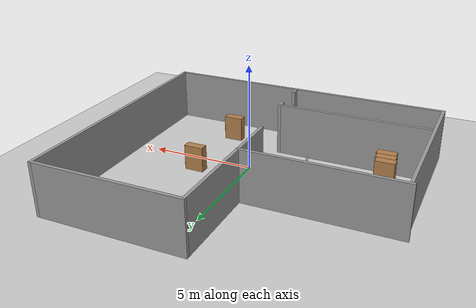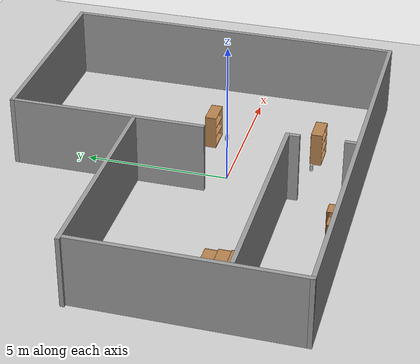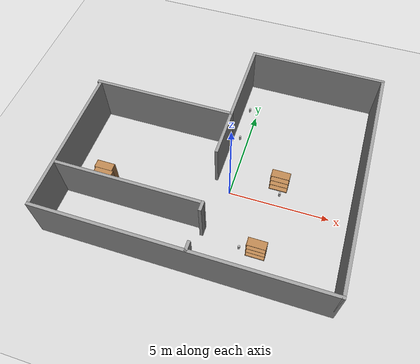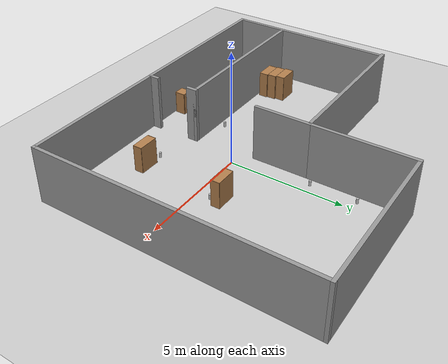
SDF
<sdf version="1.7">
 <world name="default">
  <model name="ground_plane">
   <static>1</static>
   <link name="link">
    <collision name="collision">
     <geometry><plane><normal>0 0 1</normal><size>100 100</size></plane></geometry>
     <surface>
      <contact><collide_bitmask>65535</collide_bitmask></contact>
      <friction><ode><mu>100</mu><mu2>50</mu2></ode></friction>
     </surface>
    </collision>
    <visual name="visual">
     <cast_shadows>0</cast_shadows>
     <geometry><plane><normal>0 0 1</normal><size>100 100</size></plane></geometry>
     <material>
      <script><uri>file://media/materials/scripts/gazebo.material</uri><name>Gazebo/Grey</name></script>
     </material>
    </visual>
   </link>
  </model>
  <model name="Untitled">
   <pose>-0.982656 1.40265 0 0 -0 0</pose>
   <link name="Wall_0">
    <collision name="Wall_0_Collision">
     <geometry><box><size>14 0.15 2.5</size></box></geometry>
     <pose>0 0 1.25 0 -0 0</pose>
    </collision>
    <visual name="Wall_0_Visual">
     <pose>0 0 1.25 0 -0 0</pose>
     <geometry><box><size>14 0.15 2.5</size></box></geometry>
     <material>
      <script><uri>file://media/materials/scripts/gazebo.material</uri><name>Gazebo/Grey</name></script>
      <ambient>1 1 1 1</ambient>
     </material>
     <meta><layer>0</layer></meta>
    </visual>
    <pose>0.05 -5.925 0 0 -0 0</pose>
   </link>
   <link name="Wall_14">
    <collision name="Wall_14_Collision">
     <geometry><box><size>7.5 0.15 2.5</size></box></geometry>
     <pose>0 0 1.25 0 -0 0</pose>
    </collision>
    <visual name="Wall_14_Visual">
     <pose>0 0 1.25 0 -0 0</pose>
     <geometry><box><size>7.5 0.15 2.5</size></box></geometry>
     <material>
      <script><uri>file://media/materials/scripts/gazebo.material</uri><name>Gazebo/Grey</name></script>
      <ambient>1 1 1 1</ambient>
     </material>
     <meta><layer>0</layer></meta>
    </visual>
    <pose>-6.875 -2.25 0 0 -0 1.5708</pose>
   </link>
   <link name="Wall_17">
    <collision name="Wall_17_Collision">
     <geometry><box><size>7.25 0.15 2.5</size></box></geometry>
     <pose>0 0 1.25 0 -0 0</pose>
    </collision>
    <visual name="Wall_17_Visual">
     <pose>0 0 1.25 0 -0 0</pose>
     <geometry><box><size>7.25 0.15 2.5</size></box></geometry>
     <material>
      <script><uri>file://media/materials/scripts/gazebo.material</uri><name>Gazebo/Grey</name></script>
      <ambient>1 1 1 1</ambient>
     </material>
     <meta><layer>0</layer></meta>
    </visual>
    <pose>-3.425 1.575 0 0 -0 3.14159</pose>
   </link>
   <link name="Wall_20">
    <collision name="Wall_20_Collision">
     <geometry><box><size>7.25 0.15 2.5</size></box></geometry>
     <pose>0 0 1.25 0 -0 0</pose>
    </collision>
    <visual name="Wall_20_Visual">
     <pose>0 0 1.25 0 -0 0</pose>
     <geometry><box><size>7.25 0.15 2.5</size></box></geometry>
     <material>
      <script><uri>file://media/materials/scripts/gazebo.material</uri><name>Gazebo/Grey</name></script>
      <ambient>1 1 1 1</ambient>
     </material>
     <meta><layer>0</layer></meta>
    </visual>
    <pose>-3.16931 -3.5804 0 0 -0 3.14159</pose>
   </link>
   <link name="Wall_23">
    <collision name="Wall_23_Collision">
     <geometry><box><size>0.5 0.15 2.5</size></box></geometry>
     <pose>0 0 1.25 0 -0 0</pose>
    </collision>
    <visual name="Wall_23_Visual">
     <pose>0 0 1.25 0 -0 0</pose>
     <geometry><box><size>0.5 0.15 2.5</size></box></geometry>
     <material>
      <script><uri>file://media/materials/scripts/gazebo.material</uri><name>Gazebo/Grey</name></script>
      <ambient>1 1 1 1</ambient>
     </material>
     <meta><layer>0</layer></meta>
    </visual>
    <pose>0.380689 -3.7554 0 0 -0 -1.5708</pose>
   </link>
   <link name="Wall_25">
    <collision name="Wall_25_Collision">
     <geometry><box><size>0.5 0.15 2.5</size></box></geometry>
     <pose>0 0 1.25 0 -0 0</pose>
    </collision>
    <visual name="Wall_25_Visual">
     <pose>0 0 1.25 0 -0 0</pose>
     <geometry><box><size>0.5 0.15 2.5</size></box></geometry>
     <material>
      <script><uri>file://media/materials/scripts/gazebo.material</uri><name>Gazebo/Grey</name></script>
      <ambient>1 1 1 1</ambient>
     </material>
     <meta><layer>0</layer></meta>
    </visual>
    <pose>0.423732 -5.71892 0 0 -0 1.5708</pose>
   </link>
   <link name="Wall_27">
    <collision name="Wall_27_Collision">
     <geometry><box><size>2.5 0.15 2.5</size></box></geometry>
     <pose>0 0 1.25 0 -0 0</pose>
    </collision>
    <visual name="Wall_27_Visual">
     <pose>0 0 1.25 0 -0 0</pose>
     <geometry><box><size>2.5 0.15 2.5</size></box></geometry>
     <material>
      <script><uri>file://media/materials/scripts/gazebo.material</uri><name>Gazebo/Grey</name></script>
      <ambient>1 1 1 1</ambient>
     </material>
     <meta><layer>0</layer></meta>
    </visual>
    <pose>0.125 0.4 0 0 -0 -1.5708</pose>
   </link>
   <link name="Wall_5">
    <collision name="Wall_5_Collision">
     <geometry><box><size>12 0.15 2.5</size></box></geometry>
     <pose>0 0 1.25 0 -0 0</pose>
    </collision>
    <visual name="Wall_5_Visual">
     <pose>0 0 1.25 0 -0 0</pose>
     <geometry><box><size>12 0.15 2.5</size></box></geometry>
     <material>
      <script><uri>file://media/materials/scripts/gazebo.material</uri><name>Gazebo/Grey</name></script>
      <ambient>1 1 1 1</ambient>
     </material>
     <meta><layer>0</layer></meta>
    </visual>
    <pose>6.975 -0 0 0 -0 1.5708</pose>
   </link>
   <link name="Wall_8">
    <collision name="Wall_8_Collision">
     <geometry><box><size>7 0.15 2.5</size></box></geometry>
     <pose>0 0 1.25 0 -0 0</pose>
    </collision>
    <visual name="Wall_8_Visual">
     <pose>0 0 1.25 0 -0 0</pose>
     <geometry><box><size>7 0.15 2.5</size></box></geometry>
     <material>
      <script><uri>file://media/materials/scripts/gazebo.material</uri><name>Gazebo/Grey</name></script>
      <ambient>1 1 1 1</ambient>
     </material>
     <meta><layer>0</layer></meta>
    </visual>
    <pose>3.55 5.925 0 0 -0 3.14159</pose>
   </link>
   <link name="Wall_9">
    <collision name="Wall_9_Collision">
     <geometry><box><size>4.5 0.15 2.5</size></box></geometry>
     <pose>0 0 1.25 0 -0 0</pose>
    </collision>
    <visual name="Wall_9_Visual">
     <pose>0 0 1.25 0 -0 0</pose>
     <geometry><box><size>4.5 0.15 2.5</size></box></geometry>
     <material>
      <script><uri>file://media/materials/scripts/gazebo.material</uri><name>Gazebo/Grey</name></script>
      <ambient>1 1 1 1</ambient>
     </material>
     <meta><layer>0</layer></meta>
    </visual>
    <pose>0.125 3.75 0 0 -0 -1.5708</pose>
   </link>
   <static>1</static>
  </model>
  <model name="bookshelf_3">
   <static>1</static>
   <link name="link">
    <inertial><mass>1</mass></inertial>
    <collision name="back">
     <pose>0 0.005 0.6 0 -0 0</pose>
     <geometry><box><size>0.9 0.01 1.2</size></box></geometry>
    </collision>
    <visual name="visual1">
     <pose>0 0.005 0.6 0 -0 0</pose>
     <geometry><box><size>0.9 0.01 1.2</size></box></geometry>
     <material>
      <script><uri>file://media/materials/scripts/gazebo.material</uri><name>Gazebo/Wood</name></script>
     </material>
    </visual>
    <collision name="left_side">
     <pose>0.45 -0.195 0.6 0 -0 0</pose>
     <geometry><box><size>0.02 0.4 1.2</size></box></geometry>
    </collision>
    <visual name="visual2">
     <pose>0.45 -0.195 0.6 0 -0 0</pose>
     <geometry><box><size>0.02 0.4 1.2</size></box></geometry>
     <material>
      <script><uri>file://media/materials/scripts/gazebo.material</uri><name>Gazebo/Wood</name></script>
     </material>
    </visual>
    <collision name="right_side">
     <pose>-0.45 -0.195 0.6 0 -0 0</pose>
     <geometry><box><size>0.02 0.4 1.2</size></box></geometry>
    </collision>
    <visual name="visual3">
     <pose>-0.45 -0.195 0.6 0 -0 0</pose>
     <geometry><box><size>0.02 0.4 1.2</size></box></geometry>
     <material>
      <script><uri>file://media/materials/scripts/gazebo.material</uri><name>Gazebo/Wood</name></script>
     </material>
    </visual>
    <collision name="bottom">
     <pose>0 -0.195 0.03 0 -0 0</pose>
     <geometry><box><size>0.88 0.4 0.06</size></box></geometry>
    </collision>
    <visual name="visual4">
     <pose>0 -0.195 0.03 0 -0 0</pose>
     <geometry><box><size>0.88 0.4 0.06</size></box></geometry>
     <material>
      <script><uri>file://media/materials/scripts/gazebo.material</uri><name>Gazebo/Wood</name></script>
     </material>
    </visual>
    <collision name="top">
     <pose>0 -0.195 1.19 0 -0 0</pose>
     <geometry><box><size>0.88 0.4 0.02</size></box></geometry>
    </collision>
    <visual name="visual5">
     <pose>0 -0.195 1.19 0 -0 0</pose>
     <geometry><box><size>0.88 0.4 0.02</size></box></geometry>
     <material>
      <script><uri>file://media/materials/scripts/gazebo.material</uri><name>Gazebo/Wood</name></script>
     </material>
    </visual>
    <collision name="low_shelf">
     <pose>0 -0.195 0.43 0 -0 0</pose>
     <geometry><box><size>0.88 0.4 0.02</size></box></geometry>
    </collision>
    <visual name="visual6">
     <pose>0 -0.195 0.43 0 -0 0</pose>
     <geometry><box><size>0.88 0.4 0.02</size></box></geometry>
     <material>
      <script><uri>file://media/materials/scripts/gazebo.material</uri><name>Gazebo/Wood</name></script>
     </material>
    </visual>
    <collision name="high_shelf">
     <pose>0 -0.195 0.8 0 -0 0</pose>
     <geometry><box><size>0.88 0.4 0.02</size></box></geometry>
    </collision>
    <visual name="visual7">
     <pose>0 -0.195 0.8 0 -0 0</pose>
     <geometry><box><size>0.88 0.4 0.02</size></box></geometry>
     <material>
      <script><uri>file://media/materials/scripts/gazebo.material</uri><name>Gazebo/Wood</name></script>
     </material>
    </visual>
   </link>
   <pose>2.09827 -2.56672 0 0 -0 0</pose>
  </model>
  <model name="bookshelf_8">
   <static>1</static>
   <link name="link">
    <inertial><mass>1</mass></inertial>
    <collision name="back">
     <pose>0 0.005 0.6 0 -0 0</pose>
     <geometry><box><size>0.9 0.01 1.2</size></box></geometry>
    </collision>
    <visual name="visual1">
     <pose>0 0.005 0.6 0 -0 0</pose>
     <geometry><box><size>0.9 0.01 1.2</size></box></geometry>
     <material>
      <script><uri>file://media/materials/scripts/gazebo.material</uri><name>Gazebo/Wood</name></script>
     </material>
    </visual>
    <collision name="left_side">
     <pose>0.45 -0.195 0.6 0 -0 0</pose>
     <geometry><box><size>0.02 0.4 1.2</size></box></geometry>
    </collision>
    <visual name="visual2">
     <pose>0.45 -0.195 0.6 0 -0 0</pose>
     <geometry><box><size>0.02 0.4 1.2</size></box></geometry>
     <material>
      <script><uri>file://media/materials/scripts/gazebo.material</uri><name>Gazebo/Wood</name></script>
     </material>
    </visual>
    <collision name="right_side">
     <pose>-0.45 -0.195 0.6 0 -0 0</pose>
     <geometry><box><size>0.02 0.4 1.2</size></box></geometry>
    </collision>
    <visual name="visual3">
     <pose>-0.45 -0.195 0.6 0 -0 0</pose>
     <geometry><box><size>0.02 0.4 1.2</size></box></geometry>
     <material>
      <script><uri>file://media/materials/scripts/gazebo.material</uri><name>Gazebo/Wood</name></script>
     </material>
    </visual>
    <collision name="bottom">
     <pose>0 -0.195 0.03 0 -0 0</pose>
     <geometry><box><size>0.88 0.4 0.06</size></box></geometry>
    </collision>
    <visual name="visual4">
     <pose>0 -0.195 0.03 0 -0 0</pose>
     <geometry><box><size>0.88 0.4 0.06</size></box></geometry>
     <material>
      <script><uri>file://media/materials/scripts/gazebo.material</uri><name>Gazebo/Wood</name></script>
     </material>
    </visual>
    <collision name="top">
     <pose>0 -0.195 1.19 0 -0 0</pose>
     <geometry><box><size>0.88 0.4 0.02</size></box></geometry>
    </collision>
    <visual name="visual5">
     <pose>0 -0.195 1.19 0 -0 0</pose>
     <geometry><box><size>0.88 0.4 0.02</size></box></geometry>
     <material>
      <script><uri>file://media/materials/scripts/gazebo.material</uri><name>Gazebo/Wood</name></script>
     </material>
    </visual>
    <collision name="low_shelf">
     <pose>0 -0.195 0.43 0 -0 0</pose>
     <geometry><box><size>0.88 0.4 0.02</size></box></geometry>
    </collision>
    <visual name="visual6">
     <pose>0 -0.195 0.43 0 -0 0</pose>
     <geometry><box><size>0.88 0.4 0.02</size></box></geometry>
     <material>
      <script><uri>file://media/materials/scripts/gazebo.material</uri><name>Gazebo/Wood</name></script>
     </material>
    </visual>
    <collision name="high_shelf">
     <pose>0 -0.195 0.8 0 -0 0</pose>
     <geometry><box><size>0.88 0.4 0.02</size></box></geometry>
    </collision>
    <visual name="visual7">
     <pose>0 -0.195 0.8 0 -0 0</pose>
     <geometry><box><size>0.88 0.4 0.02</size></box></geometry>
     <material>
      <script><uri>file://media/materials/scripts/gazebo.material</uri><name>Gazebo/Wood</name></script>
     </material>
    </visual>
   </link>
   <pose>2.25532 1.26255 0 0 -0 0</pose>
  </model>
  <model name="bookshelf_9">
   <static>1</static>
   <link name="link">
    <inertial><mass>1</mass></inertial>
    <collision name="back">
     <pose>0 0.005 0.6 0 -0 0</pose>
     <geometry><box><size>0.9 0.01 1.2</size></box></geometry>
    </collision>
    <visual name="visual1">
     <pose>0 0.005 0.6 0 -0 0</pose>
     <geometry><box><size>0.9 0.01 1.2</size></box></geometry>
     <material>
      <script><uri>file://media/materials/scripts/gazebo.material</uri><name>Gazebo/Wood</name></script>
     </material>
    </visual>
    <collision name="left_side">
     <pose>0.45 -0.195 0.6 0 -0 0</pose>
     <geometry><box><size>0.02 0.4 1.2</size></box></geometry>
    </collision>
    <visual name="visual2">
     <pose>0.45 -0.195 0.6 0 -0 0</pose>
     <geometry><box><size>0.02 0.4 1.2</size></box></geometry>
     <material>
      <script><uri>file://media/materials/scripts/gazebo.material</uri><name>Gazebo/Wood</name></script>
     </material>
    </visual>
    <collision name="right_side">
     <pose>-0.45 -0.195 0.6 0 -0 0</pose>
     <geometry><box><size>0.02 0.4 1.2</size></box></geometry>
    </collision>
    <visual name="visual3">
     <pose>-0.45 -0.195 0.6 0 -0 0</pose>
     <geometry><box><size>0.02 0.4 1.2</size></box></geometry>
     <material>
      <script><uri>file://media/materials/scripts/gazebo.material</uri><name>Gazebo/Wood</name></script>
     </material>
    </visual>
    <collision name="bottom">
     <pose>0 -0.195 0.03 0 -0 0</pose>
     <geometry><box><size>0.88 0.4 0.06</size></box></geometry>
    </collision>
    <visual name="visual4">
     <pose>0 -0.195 0.03 0 -0 0</pose>
     <geometry><box><size>0.88 0.4 0.06</size></box></geometry>
     <material>
      <script><uri>file://media/materials/scripts/gazebo.material</uri><name>Gazebo/Wood</name></script>
     </material>
    </visual>
    <collision name="top">
     <pose>0 -0.195 1.19 0 -0 0</pose>
     <geometry><box><size>0.88 0.4 0.02</size></box></geometry>
    </collision>
    <visual name="visual5">
     <pose>0 -0.195 1.19 0 -0 0</pose>
     <geometry><box><size>0.88 0.4 0.02</size></box></geometry>
     <material>
      <script><uri>file://media/materials/scripts/gazebo.material</uri><name>Gazebo/Wood</name></script>
     </material>
    </visual>
    <collision name="low_shelf">
     <pose>0 -0.195 0.43 0 -0 0</pose>
     <geometry><box><size>0.88 0.4 0.02</size></box></geometry>
    </collision>
    <visual name="visual6">
     <pose>0 -0.195 0.43 0 -0 0</pose>
     <geometry><box><size>0.88 0.4 0.02</size></box></geometry>
     <material>
      <script><uri>file://media/materials/scripts/gazebo.material</uri><name>Gazebo/Wood</name></script>
     </material>
    </visual>
    <collision name="high_shelf">
     <pose>0 -0.195 0.8 0 -0 0</pose>
     <geometry><box><size>0.88 0.4 0.02</size></box></geometry>
    </collision>
    <visual name="visual7">
     <pose>0 -0.195 0.8 0 -0 0</pose>
     <geometry><box><size>0.88 0.4 0.02</size></box></geometry>
     <material>
      <script><uri>file://media/materials/scripts/gazebo.material</uri><name>Gazebo/Wood</name></script>
     </material>
    </visual>
   </link>
   <pose>-5.96134 -1.60752 0 0 -0 0</pose>
  </model>
  <model name="bookshelf_10">
   <static>1</static>
   <link name="link">
    <inertial><mass>1</mass></inertial>
    <collision name="back">
     <pose>0 0.005 0.6 0 -0 0</pose>
     <geometry><box><size>0.9 0.01 1.2</size></box></geometry>
    </collision>
    <visual name="visual1">
     <pose>0 0.005 0.6 0 -0 0</pose>
     <geometry><box><size>0.9 0.01 1.2</size></box></geometry>
     <material>
      <script><uri>file://media/materials/scripts/gazebo.material</uri><name>Gazebo/Wood</name></script>
     </material>
    </visual>
    <collision name="left_side">
     <pose>0.45 -0.195 0.6 0 -0 0</pose>
     <geometry><box><size>0.02 0.4 1.2</size></box></geometry>
    </collision>
    <visual name="visual2">
     <pose>0.45 -0.195 0.6 0 -0 0</pose>
     <geometry><box><size>0.02 0.4 1.2</size></box></geometry>
     <material>
      <script><uri>file://media/materials/scripts/gazebo.material</uri><name>Gazebo/Wood</name></script>
     </material>
    </visual>
    <collision name="right_side">
     <pose>-0.45 -0.195 0.6 0 -0 0</pose>
     <geometry><box><size>0.02 0.4 1.2</size></box></geometry>
    </collision>
    <visual name="visual3">
     <pose>-0.45 -0.195 0.6 0 -0 0</pose>
     <geometry><box><size>0.02 0.4 1.2</size></box></geometry>
     <material>
      <script><uri>file://media/materials/scripts/gazebo.material</uri><name>Gazebo/Wood</name></script>
     </material>
    </visual>
    <collision name="bottom">
     <pose>0 -0.195 0.03 0 -0 0</pose>
     <geometry><box><size>0.88 0.4 0.06</size></box></geometry>
    </collision>
    <visual name="visual4">
     <pose>0 -0.195 0.03 0 -0 0</pose>
     <geometry><box><size>0.88 0.4 0.06</size></box></geometry>
     <material>
      <script><uri>file://media/materials/scripts/gazebo.material</uri><name>Gazebo/Wood</name></script>
     </material>
    </visual>
    <collision name="top">
     <pose>0 -0.195 1.19 0 -0 0</pose>
     <geometry><box><size>0.88 0.4 0.02</size></box></geometry>
    </collision>
    <visual name="visual5">
     <pose>0 -0.195 1.19 0 -0 0</pose>
     <geometry><box><size>0.88 0.4 0.02</size></box></geometry>
     <material>
      <script><uri>file://media/materials/scripts/gazebo.material</uri><name>Gazebo/Wood</name></script>
     </material>
    </visual>
    <collision name="low_shelf">
     <pose>0 -0.195 0.43 0 -0 0</pose>
     <geometry><box><size>0.88 0.4 0.02</size></box></geometry>
    </collision>
    <visual name="visual6">
     <pose>0 -0.195 0.43 0 -0 0</pose>
     <geometry><box><size>0.88 0.4 0.02</size></box></geometry>
     <material>
      <script><uri>file://media/materials/scripts/gazebo.material</uri><name>Gazebo/Wood</name></script>
     </material>
    </visual>
    <collision name="high_shelf">
     <pose>0 -0.195 0.8 0 -0 0</pose>
     <geometry><box><size>0.88 0.4 0.02</size></box></geometry>
    </collision>
    <visual name="visual7">
     <pose>0 -0.195 0.8 0 -0 0</pose>
     <geometry><box><size>0.88 0.4 0.02</size></box></geometry>
     <material>
      <script><uri>file://media/materials/scripts/gazebo.material</uri><name>Gazebo/Wood</name></script>
     </material>
    </visual>
   </link>
   <pose>-6.01822 -1.20118 0 0 -0 0</pose>
  </model>
  <model name="bookshelf_11">
   <static>1</static>
   <link name="link">
    <inertial><mass>1</mass></inertial>
    <collision name="back">
     <pose>0 0.005 0.6 0 -0 0</pose>
     <geometry><box><size>0.9 0.01 1.2</size></box></geometry>
    </collision>
    <visual name="visual1">
     <pose>0 0.005 0.6 0 -0 0</pose>
     <geometry><box><size>0.9 0.01 1.2</size></box></geometry>
     <material>
      <script><uri>file://media/materials/scripts/gazebo.material</uri><name>Gazebo/Wood</name></script>
     </material>
    </visual>
    <collision name="left_side">
     <pose>0.45 -0.195 0.6 0 -0 0</pose>
     <geometry><box><size>0.02 0.4 1.2</size></box></geometry>
    </collision>
    <visual name="visual2">
     <pose>0.45 -0.195 0.6 0 -0 0</pose>
     <geometry><box><size>0.02 0.4 1.2</size></box></geometry>
     <material>
      <script><uri>file://media/materials/scripts/gazebo.material</uri><name>Gazebo/Wood</name></script>
     </material>
    </visual>
    <collision name="right_side">
     <pose>-0.45 -0.195 0.6 0 -0 0</pose>
     <geometry><box><size>0.02 0.4 1.2</size></box></geometry>
    </collision>
    <visual name="visual3">
     <pose>-0.45 -0.195 0.6 0 -0 0</pose>
     <geometry><box><size>0.02 0.4 1.2</size></box></geometry>
     <material>
      <script><uri>file://media/materials/scripts/gazebo.material</uri><name>Gazebo/Wood</name></script>
     </material>
    </visual>
    <collision name="bottom">
     <pose>0 -0.195 0.03 0 -0 0</pose>
     <geometry><box><size>0.88 0.4 0.06</size></box></geometry>
    </collision>
    <visual name="visual4">
     <pose>0 -0.195 0.03 0 -0 0</pose>
     <geometry><box><size>0.88 0.4 0.06</size></box></geometry>
     <material>
      <script><uri>file://media/materials/scripts/gazebo.material</uri><name>Gazebo/Wood</name></script>
     </material>
    </visual>
    <collision name="top">
     <pose>0 -0.195 1.19 0 -0 0</pose>
     <geometry><box><size>0.88 0.4 0.02</size></box></geometry>
    </collision>
    <visual name="visual5">
     <pose>0 -0.195 1.19 0 -0 0</pose>
     <geometry><box><size>0.88 0.4 0.02</size></box></geometry>
     <material>
      <script><uri>file://media/materials/scripts/gazebo.material</uri><name>Gazebo/Wood</name></script>
     </material>
    </visual>
    <collision name="low_shelf">
     <pose>0 -0.195 0.43 0 -0 0</pose>
     <geometry><box><size>0.88 0.4 0.02</size></box></geometry>
    </collision>
    <visual name="visual6">
     <pose>0 -0.195 0.43 0 -0 0</pose>
     <geometry><box><size>0.88 0.4 0.02</size></box></geometry>
     <material>
      <script><uri>file://media/materials/scripts/gazebo.material</uri><name>Gazebo/Wood</name></script>
     </material>
    </visual>
    <collision name="high_shelf">
     <pose>0 -0.195 0.8 0 -0 0</pose>
     <geometry><box><size>0.88 0.4 0.02</size></box></geometry>
    </collision>
    <visual name="visual7">
     <pose>0 -0.195 0.8 0 -0 0</pose>
     <geometry><box><size>0.88 0.4 0.02</size></box></geometry>
     <material>
      <script><uri>file://media/materials/scripts/gazebo.material</uri><name>Gazebo/Wood</name></script>
     </material>
    </visual>
   </link>
   <pose>-6.0986 -0.795389 0 0 -0 0</pose>
  </model>
  <model name="cabinet">
   <static>1</static>
   <link name="cabinet_bottom_plate">
    <inertial>
     <pose>0 0 -1 0 -0 0</pose>
     <inertia><ixx>2.05</ixx><ixy>0</ixy><ixz>0</ixz><iyy>2.05</iyy><iyz>0</iyz><izz>2.05</izz></inertia>
     <mass>25</mass>
    </inertial>
    <collision name="cabinet_bottom_plate_geom">
     <pose>0 0 0.01 0 -0 0</pose>
     <geometry><box><size>0.45 0.45 0.02</size></box></geometry>
    </collision>
    <visual name="cabinet_bottom_plate_geom_visual">
     <pose>0 0 0.01 0 -0 0</pose>
     <geometry><box><size>0.45 0.45 0.02</size></box></geometry>
     <material>
      <script><uri>file://media/materials/scripts/gazebo.material</uri><name>Gazebo/Wood</name></script>
     </material>
    </visual>
    <collision name="cabinet_bottom_plate_geom_cabinet_back_plate">
     <pose>0.235 0 0.51 0 -0 0</pose>
     <geometry><box><size>0.02 0.45 1.02</size></box></geometry>
    </collision>
    <visual name="cabinet_bottom_plate_geom_cabinet_back_plate_visual">
     <pose>0.235 0 0.51 0 -0 0</pose>
     <geometry><box><size>0.02 0.45 1.02</size></box></geometry>
     <material>
      <script><uri>file://media/materials/scripts/gazebo.material</uri><name>Gazebo/Wood</name></script>
     </material>
    </visual>
    <collision name="cabinet_bottom_plate_geom_cabinet_left_plate">
     <pose>0 0.235 0.51 0 -0 0</pose>
     <geometry><box><size>0.45 0.02 1.02</size></box></geometry>
    </collision>
    <visual name="cabinet_bottom_plate_geom_cabinet_left_plate_visual">
     <pose>0 0.235 0.51 0 -0 0</pose>
     <geometry><box><size>0.45 0.02 1.02</size></box></geometry>
     <material>
      <script><uri>file://media/materials/scripts/gazebo.material</uri><name>Gazebo/Wood</name></script>
     </material>
    </visual>
    <collision name="cabinet_bottom_plate_geom_cabinet_middle_plate">
     <pose>0 0 0.51 0 -0 0</pose>
     <geometry><box><size>0.45 0.45 0.02</size></box></geometry>
    </collision>
    <visual name="cabinet_bottom_plate_geom_cabinet_middle_plate_visual">
     <pose>0 0 0.51 0 -0 0</pose>
     <geometry><box><size>0.45 0.45 0.02</size></box></geometry>
     <material>
      <script><uri>file://media/materials/scripts/gazebo.material</uri><name>Gazebo/Wood</name></script>
     </material>
    </visual>
    <collision name="cabinet_bottom_plate_geom_cabinet_right_plate">
     <pose>0 -0.235 0.51 0 -0 0</pose>
     <geometry><box><size>0.45 0.02 1.02</size></box></geometry>
    </collision>
    <visual name="cabinet_bottom_plate_geom_cabinet_right_plate_visual">
     <pose>0 -0.235 0.51 0 -0 0</pose>
     <geometry><box><size>0.45 0.02 1.02</size></box></geometry>
     <material>
      <script><uri>file://media/materials/scripts/gazebo.material</uri><name>Gazebo/Wood</name></script>
     </material>
    </visual>
    <collision name="cabinet_bottom_plate_geom_cabinet_top_plate">
     <pose>0 0 1.01 0 -0 0</pose>
     <geometry><box><size>0.45 0.45 0.02</size></box></geometry>
    </collision>
    <visual name="cabinet_bottom_plate_geom_cabinet_top_plate_visual">
     <pose>0 0 1.01 0 -0 0</pose>
     <geometry><box><size>0.45 0.45 0.02</size></box></geometry>
     <material>
      <script><uri>file://media/materials/scripts/gazebo.material</uri><name>Gazebo/Wood</name></script>
     </material>
    </visual>
   </link>
   <pose>-2.29024 -4.1579 0 0 -0 0</pose>
  </model>
  <model name="beer">
   <link name="link">
    <pose>0 0 0.115 0 -0 0</pose>
    <inertial>
     <mass>0.39</mass>
     <inertia><ixx>0.00058</ixx><ixy>0</ixy><ixz>0</ixz><iyy>0.00058</iyy><iyz>0</iyz><izz>0.00019</izz></inertia>
    </inertial>
    <collision name="collision">
     <geometry><cylinder><radius>0.055</radius><length>0.23</length></cylinder></geometry>
    </collision>
    <visual name="visual">
     <geometry><cylinder><radius>0.055</radius><length>0.23</length></cylinder></geometry>
     <material>
      <script>
       <uri>model://beer/materials/scripts</uri>
       <uri>model://beer/materials/textures</uri>
       <name>Beer/Diffuse</name>
      </script>
     </material>
    </visual>
   </link>
   <pose>1.26957 -2.69588 -7e-06 -1e-06 0 -5.5e-05</pose>
  </model>
  <model name="beer_0">
   <link name="link">
    <pose>0 0 0.115 0 -0 0</pose>
    <inertial>
     <mass>0.39</mass>
     <inertia><ixx>0.00058</ixx><ixy>0</ixy><ixz>0</ixz><iyy>0.00058</iyy><iyz>0</iyz><izz>0.00019</izz></inertia>
    </inertial>
    <collision name="collision">
     <geometry><cylinder><radius>0.055</radius><length>0.23</length></cylinder></geometry>
    </collision>
    <visual name="visual">
     <geometry><cylinder><radius>0.055</radius><length>0.23</length></cylinder></geometry>
     <material>
      <script>
       <uri>model://beer/materials/scripts</uri>
       <uri>model://beer/materials/textures</uri>
       <name>Beer/Diffuse</name>
      </script>
     </material>
    </visual>
   </link>
   <pose>-0.445137 3.3946 -7e-06 -1e-06 -0 -3e-05</pose>
  </model>
  <model name="beer_1">
   <link name="link">
    <pose>0 0 0.115 0 -0 0</pose>
    <inertial>
     <mass>0.39</mass>
     <inertia><ixx>0.00058</ixx><ixy>0</ixy><ixz>0</ixz><iyy>0.00058</iyy><iyz>0</iyz><izz>0.00019</izz></inertia>
    </inertial>
    <collision name="collision">
     <geometry><cylinder><radius>0.055</radius><length>0.23</length></cylinder></geometry>
    </collision>
    <visual name="visual">
     <geometry><cylinder><radius>0.055</radius><length>0.23</length></cylinder></geometry>
     <material>
      <script>
       <uri>model://beer/materials/scripts</uri>
       <uri>model://beer/materials/textures</uri>
       <name>Beer/Diffuse</name>
      </script>
     </material>
    </visual>
   </link>
   <pose>-0.447555 5.39333 -2e-06 1e-06 0 -2.8e-05</pose>
  </model>
  <model name="beer_3">
   <link name="link">
    <pose>0 0 0.115 0 -0 0</pose>
    <inertial>
     <mass>0.39</mass>
     <inertia><ixx>0.00058</ixx><ixy>0</ixy><ixz>0</ixz><iyy>0.00058</iyy><iyz>0</iyz><izz>0.00019</izz></inertia>
    </inertial>
    <collision name="collision">
     <geometry><cylinder><radius>0.055</radius><length>0.23</length></cylinder></geometry>
    </collision>
    <visual name="visual">
     <geometry><cylinder><radius>0.055</radius><length>0.23</length></cylinder></geometry>
     <material>
      <script>
       <uri>model://beer/materials/scripts</uri>
       <uri>model://beer/materials/textures</uri>
       <name>Beer/Diffuse</name>
      </script>
     </material>
    </visual>
   </link>
   <pose>-2.20262 -1.79748 -2e-06 1e-06 -0 -1.6e-05</pose>
  </model>
  <model name="beer_4">
   <link name="link">
    <pose>0 0 0.115 0 -0 0</pose>
    <inertial>
     <mass>0.39</mass>
     <inertia><ixx>0.00058</ixx><ixy>0</ixy><ixz>0</ixz><iyy>0.00058</iyy><iyz>0</iyz><izz>0.00019</izz></inertia>
    </inertial>
    <collision name="collision">
     <geometry><cylinder><radius>0.055</radius><length>0.23</length></cylinder></geometry>
    </collision>
    <visual name="visual">
     <geometry><cylinder><radius>0.055</radius><length>0.23</length></cylinder></geometry>
     <material>
      <script>
       <uri>model://beer/materials/scripts</uri>
       <uri>model://beer/materials/textures</uri>
       <name>Beer/Diffuse</name>
      </script>
     </material>
    </visual>
   </link>
   <pose>2.40435 0.625286 -7e-06 -1e-06 -0 -1.2e-05</pose>
  </model>
 </world>
</sdf>
